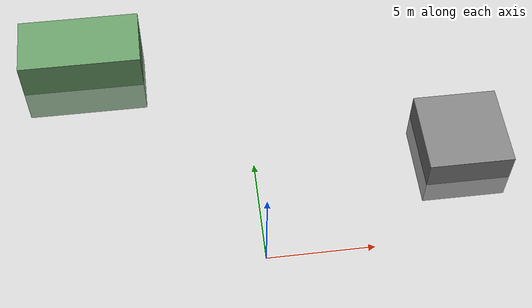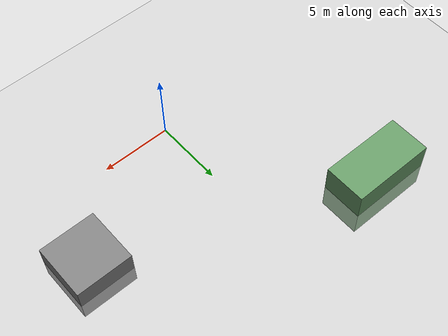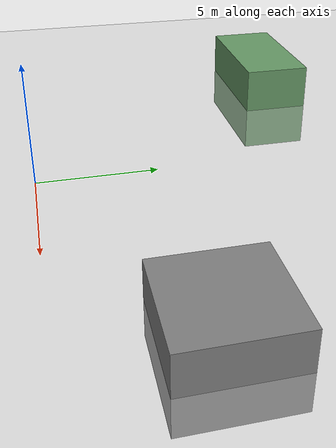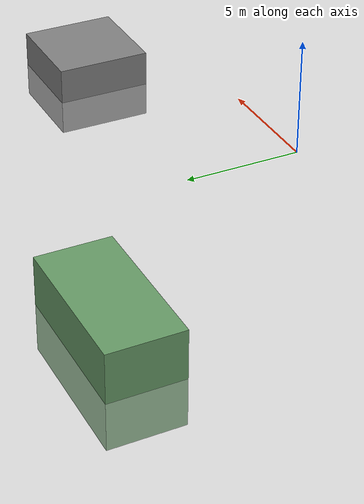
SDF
<?xml version="1.0" ?>
<sdf version="1.7">
  <world name="experimental_polygon">
    <physics type="ode">
      <max_step_size>0.01</max_step_size>
      <real_time_factor>1.0</real_time_factor>
    </physics>

    <scene>
      <ambient>0.4 0.4 0.4 1</ambient>
      <background>0.7 0.7 0.7 1</background>
      <shadows>true</shadows>
    </scene>

    <!-- Ground (inline, avoids external model://ground_plane dependency) -->
    <model name="ground_plane">
      <static>true</static>
      <pose>0 0 0 0 0 0</pose>
      <link name="ground_link">
        <collision name="collision">
          <geometry>
            <plane>
              <normal>0 0 1</normal>
              <size>500 500</size>
            </plane>
          </geometry>
          <surface>
            <friction>
              <ode>
                <mu>1.0</mu>
                <mu2>1.0</mu2>
              </ode>
            </friction>
          </surface>
        </collision>
        <visual name="visual">
          <geometry>
            <plane>
              <normal>0 0 1</normal>
              <size>500 500</size>
            </plane>
          </geometry>
          <material>
            <ambient>0.8 0.8 0.8 1</ambient>
            <diffuse>0.8 0.8 0.8 1</diffuse>
          </material>
        </visual>
      </link>
    </model>

    <!-- Static Obstacles -->
    <model name="building_1">
      <static>true</static>
      <pose>10 5 0 0 0 0</pose>
      <link name="link">
        <collision name="collision">
          <geometry><box><size>4 4 3</size></box></geometry>
        </collision>
        <visual name="visual">
          <geometry><box><size>4 4 3</size></box></geometry>
          <material><ambient>0.5 0.5 0.5 1</ambient></material>
        </visual>
      </link>
    </model>

    <model name="building_2">
      <static>true</static>
      <pose>-8 12 0 0 0 0</pose>
      <link name="link">
        <collision name="collision">
          <geometry><box><size>6 3 4</size></box></geometry>
        </collision>
        <visual name="visual">
          <geometry><box><size>6 3 4</size></box></geometry>
          <material><ambient>0.4 0.6 0.4 1</ambient></material>
        </visual>
      </link>
    </model>

    <!-- Light -->
    <light name="sun" type="directional">
      <pose>0 0 50 0 0 0</pose>
      <diffuse>0.8 0.8 0.8 1</diffuse>
      <specular>0.1 0.1 0.1 1</specular>
    </light>

    <!-- Plugins -->
    <plugin filename="gz-sim-physics-system" name="gz::sim::systems::Physics"></plugin>
    <plugin filename="gz-sim-scene-broadcaster-system" name="gz::sim::systems::SceneBroadcaster"></plugin>
  </world>
</sdf>
